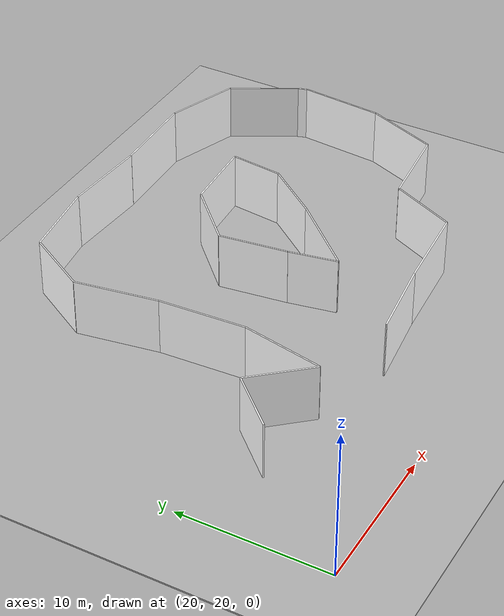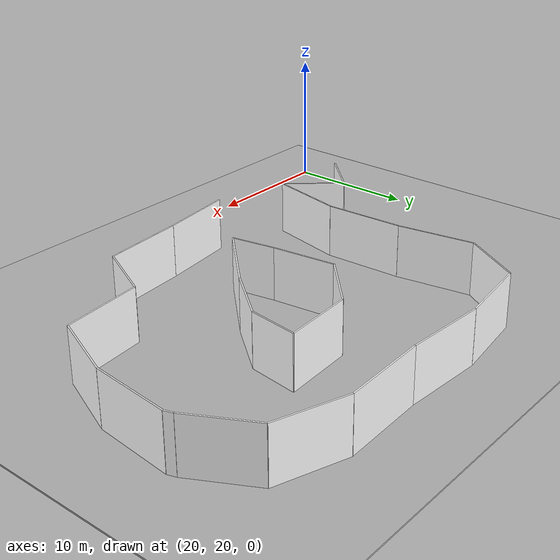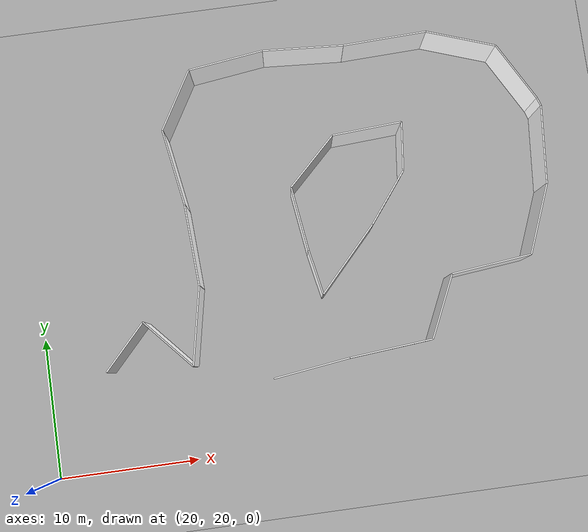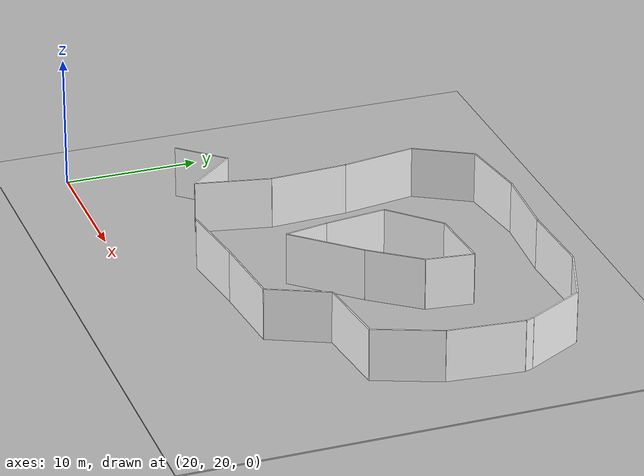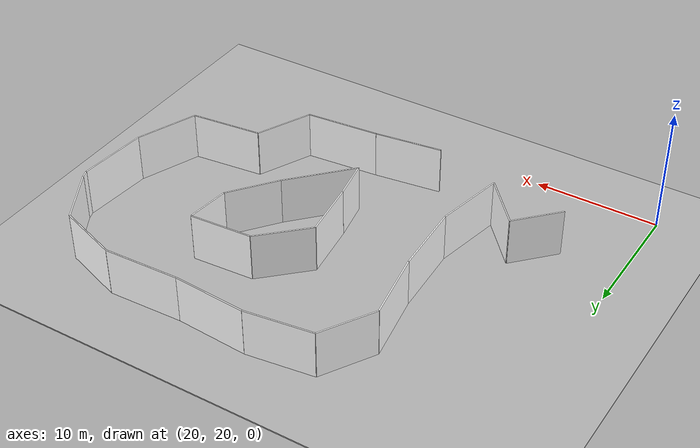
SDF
<sdf version="1.6">
 <world name="mars cave">
  <model name="ground_plane">
   <static>1</static>
   <link name="link">
    <collision name="collision"><geometry><box><size>200 200 0.1</size></box></geometry></collision>
    <visual name="visual">
     <cast_shadows>0</cast_shadows>
     <geometry><box><size>200 200 0.1</size></box></geometry>
     <material>
      <script>
       <uri>model://mars_plane/materials/scripts</uri>
       <uri>model://mars_plane/materials/textures</uri>
       <name>vrc/mars</name>
      </script>
     </material>
    </visual>
   </link>
   <pose>30 30 0 0 0 0</pose>
  </model>
  <model name="wall_0">
   <pose>57.35 38.7 2.0 0 0 1.4817467441603989</pose>
   <link name="Wall_0">
    <collision name="Wall_0_Collision">
     <geometry><box><size>5.62227711874824 4 0.1</size></box></geometry>
    </collision>
    <visual name="Wall_0_Visual">
     <geometry><box><size>5.62227711874824 4 0.1</size></box></geometry>
     <material>
      <script>
       <uri>model://walls/materials/scripts</uri>
       <name>mars/wall01</name>
       <uri>model://walls/materials/textures</uri>
      </script>
      <ambient>1 1 1 1</ambient>
     </material>
    </visual>
    <pose>0 0 0 1.5707963267948966 0 0</pose>
   </link>
   <static>1</static>
  </model>
  <model name="wall_1">
   <pose>56.150000000000006 33.5 2.0 0 0 1.1938870564700756</pose>
   <link name="Wall_0">
    <collision name="Wall_0_Collision">
     <geometry><box><size>5.16236379965612 4 0.1</size></box></geometry>
    </collision>
    <visual name="Wall_0_Visual">
     <geometry><box><size>5.16236379965612 4 0.1</size></box></geometry>
     <material>
      <script>
       <uri>model://walls/materials/scripts</uri>
       <name>mars/wall01</name>
       <uri>model://walls/materials/textures</uri>
      </script>
      <ambient>1 1 1 1</ambient>
     </material>
    </visual>
    <pose>0 0 0 1.5707963267948966 0 0</pose>
   </link>
   <static>1</static>
  </model>
  <model name="wall_2">
   <pose>52.35 30.8 2.0 0 0 0.10487693873023408</pose>
   <link name="Wall_0">
    <collision name="Wall_0_Collision">
     <geometry><box><size>5.731491952362843 4 0.1</size></box></geometry>
    </collision>
    <visual name="Wall_0_Visual">
     <geometry><box><size>5.731491952362843 4 0.1</size></box></geometry>
     <material>
      <script>
       <uri>model://walls/materials/scripts</uri>
       <name>mars/wall01</name>
       <uri>model://walls/materials/textures</uri>
      </script>
      <ambient>1 1 1 1</ambient>
     </material>
    </visual>
    <pose>0 0 0 1.5707963267948966 0 0</pose>
   </link>
   <static>1</static>
  </model>
  <model name="wall_3">
   <pose>48.5 28.35 2.0 0 0 1.1354430516425942</pose>
   <link name="Wall_0">
    <collision name="Wall_0_Collision">
     <geometry><box><size>4.742362280551751 4 0.1</size></box></geometry>
    </collision>
    <visual name="Wall_0_Visual">
     <geometry><box><size>4.742362280551751 4 0.1</size></box></geometry>
     <material>
      <script>
       <uri>model://walls/materials/scripts</uri>
       <name>mars/wall01</name>
       <uri>model://walls/materials/textures</uri>
      </script>
      <ambient>1 1 1 1</ambient>
     </material>
    </visual>
    <pose>0 0 0 1.5707963267948966 0 0</pose>
   </link>
   <static>1</static>
  </model>
  <model name="wall_4">
   <pose>44.55 25.95 2.0 0 0 0.08454375551299816</pose>
   <link name="Wall_0">
    <collision name="Wall_0_Collision">
     <geometry><box><size>5.921148537234983 4 0.1</size></box></geometry>
    </collision>
    <visual name="Wall_0_Visual">
     <geometry><box><size>5.921148537234983 4 0.1</size></box></geometry>
     <material>
      <script>
       <uri>model://walls/materials/scripts</uri>
       <name>mars/wall01</name>
       <uri>model://walls/materials/textures</uri>
      </script>
      <ambient>1 1 1 1</ambient>
     </material>
    </visual>
    <pose>0 0 0 1.5707963267948966 0 0</pose>
   </link>
   <static>1</static>
  </model>
  <model name="wall_5">
   <pose>38.900000000000006 25.35 2.0 0 0 0.12891077168399134</pose>
   <link name="Wall_0">
    <collision name="Wall_0_Collision">
     <geometry><box><size>5.445181356024791 4 0.1</size></box></geometry>
    </collision>
    <visual name="Wall_0_Visual">
     <geometry><box><size>5.445181356024791 4 0.1</size></box></geometry>
     <material>
      <script>
       <uri>model://walls/materials/scripts</uri>
       <name>mars/wall01</name>
       <uri>model://walls/materials/textures</uri>
      </script>
      <ambient>1 1 1 1</ambient>
     </material>
    </visual>
    <pose>0 0 0 1.5707963267948966 0 0</pose>
   </link>
   <static>1</static>
  </model>
  <model name="wall_60">
   <pose>26.25 28.55 2.0 0 0 -2.322873494314097</pose>
   <link name="Wall_0">
    <collision name="Wall_0_Collision">
     <geometry><box><size>4.244997055358225 4 0.1</size></box></geometry>
    </collision>
    <visual name="Wall_0_Visual">
     <geometry><box><size>4.244997055358225 4 0.1</size></box></geometry>
     <material>
      <script>
       <uri>model://walls/materials/scripts</uri>
       <name>mars/wall08</name>
       <uri>model://walls/materials/textures</uri>
      </script>
      <ambient>1 1 1 1</ambient>
     </material>
    </visual>
    <pose>0 0 0 1.5707963267948966 0 0</pose>
   </link>
   <static>1</static>
  </model>
  <model name="wall_61">
   <pose>29.25 28.35 2.0 0 0 2.295662470410238</pose>
   <link name="Wall_0">
    <collision name="Wall_0_Collision">
     <geometry><box><size>4.675467891024384 4 0.1</size></box></geometry>
    </collision>
    <visual name="Wall_0_Visual">
     <geometry><box><size>4.675467891024384 4 0.1</size></box></geometry>
     <material>
      <script>
       <uri>model://walls/materials/scripts</uri>
       <name>mars/stop_sign</name>
       <uri>model://walls/materials/textures</uri>
      </script>
      <ambient>1 1 1 1</ambient>
     </material>
    </visual>
    <pose>0 0 0 1.5707963267948966 0 0</pose>
   </link>
   <static>1</static>
  </model>
  <model name="wall_62">
   <pose>31.35 29.35 2.0 0 0 -1.768191886644777</pose>
   <link name="Wall_0">
    <collision name="Wall_0_Collision">
     <geometry><box><size>5.608921464952063 4 0.1</size></box></geometry>
    </collision>
    <visual name="Wall_0_Visual">
     <geometry><box><size>5.608921464952063 4 0.1</size></box></geometry>
     <material>
      <script>
       <uri>model://walls/materials/scripts</uri>
       <name>mars/wall08</name>
       <uri>model://walls/materials/textures</uri>
      </script>
      <ambient>1 1 1 1</ambient>
     </material>
    </visual>
    <pose>0 0 0 1.5707963267948966 0 0</pose>
   </link>
   <static>1</static>
  </model>
  <model name="wall_63">
   <pose>31.75 35.0 2.0 0 0 -1.5191182423124672</pose>
   <link name="Wall_0">
    <collision name="Wall_0_Collision">
     <geometry><box><size>5.807753438292639 4 0.1</size></box></geometry>
    </collision>
    <visual name="Wall_0_Visual">
     <geometry><box><size>5.807753438292639 4 0.1</size></box></geometry>
     <material>
      <script>
       <uri>model://walls/materials/scripts</uri>
       <name>mars/wall08</name>
       <uri>model://walls/materials/textures</uri>
      </script>
      <ambient>1 1 1 1</ambient>
     </material>
    </visual>
    <pose>0 0 0 1.5707963267948966 0 0</pose>
   </link>
   <static>1</static>
  </model>
  <model name="wall_64">
   <pose>31.15 40.65 2.0 0 0 -1.408597493331514</pose>
   <link name="Wall_0">
    <collision name="Wall_0_Collision">
     <geometry><box><size>5.573149917237109 4 0.1</size></box></geometry>
    </collision>
    <visual name="Wall_0_Visual">
     <geometry><box><size>5.573149917237109 4 0.1</size></box></geometry>
     <material>
      <script>
       <uri>model://walls/materials/scripts</uri>
       <name>mars/wall09</name>
       <uri>model://walls/materials/textures</uri>
      </script>
      <ambient>1 1 1 1</ambient>
     </material>
    </visual>
    <pose>0 0 0 1.5707963267948966 0 0</pose>
   </link>
   <static>1</static>
  </model>
  <model name="wall_65">
   <pose>31.9 45.45 2.0 0 0 -2.100385925576973</pose>
   <link name="Wall_0">
    <collision name="Wall_0_Collision">
     <geometry><box><size>4.750789408087884 4 0.1</size></box></geometry>
    </collision>
    <visual name="Wall_0_Visual">
     <geometry><box><size>4.750789408087884 4 0.1</size></box></geometry>
     <material>
      <script>
       <uri>model://walls/materials/scripts</uri>
       <name>mars/wall09</name>
       <uri>model://walls/materials/textures</uri>
      </script>
      <ambient>1 1 1 1</ambient>
     </material>
    </visual>
    <pose>0 0 0 1.5707963267948966 0 0</pose>
   </link>
   <static>1</static>
  </model>
  <model name="wall_66">
   <pose>35.8 47.85 2.0 0 0 -3.0126818819058014</pose>
   <link name="Wall_0">
    <collision name="Wall_0_Collision">
     <geometry><box><size>5.445181356024792 4 0.1</size></box></geometry>
    </collision>
    <visual name="Wall_0_Visual">
     <geometry><box><size>5.445181356024792 4 0.1</size></box></geometry>
     <material>
      <script>
       <uri>model://walls/materials/scripts</uri>
       <name>mars/wall09</name>
       <uri>model://walls/materials/textures</uri>
      </script>
      <ambient>1 1 1 1</ambient>
     </material>
    </visual>
    <pose>0 0 0 1.5707963267948966 0 0</pose>
   </link>
   <static>1</static>
  </model>
  <model name="wall_67">
   <pose>41.4 48.0 2.0 0 0 3.072736164288748</pose>
   <link name="Wall_0">
    <collision name="Wall_0_Collision">
     <geometry><box><size>5.81377674149945 4 0.1</size></box></geometry>
    </collision>
    <visual name="Wall_0_Visual">
     <geometry><box><size>5.81377674149945 4 0.1</size></box></geometry>
     <material>
      <script>
       <uri>model://walls/materials/scripts</uri>
       <name>mars/wall09</name>
       <uri>model://walls/materials/textures</uri>
      </script>
      <ambient>1 1 1 1</ambient>
     </material>
    </visual>
    <pose>0 0 0 1.5707963267948966 0 0</pose>
   </link>
   <static>1</static>
  </model>
  <model name="wall_68">
   <pose>47.3 47.9 2.0 0 0 -3.1082716577115455</pose>
   <link name="Wall_0">
    <collision name="Wall_0_Collision">
     <geometry><box><size>6.003332407921453 4 0.1</size></box></geometry>
    </collision>
    <visual name="Wall_0_Visual">
     <geometry><box><size>6.003332407921453 4 0.1</size></box></geometry>
     <material>
      <script>
       <uri>model://walls/materials/scripts</uri>
       <name>mars/wall09</name>
       <uri>model://walls/materials/textures</uri>
      </script>
      <ambient>1 1 1 1</ambient>
     </material>
    </visual>
    <pose>0 0 0 1.5707963267948966 0 0</pose>
   </link>
   <static>1</static>
  </model>
  <model name="wall_69">
   <pose>52.7 47.15 2.0 0 0 2.801210714947886</pose>
   <link name="Wall_0">
    <collision name="Wall_0_Collision">
     <geometry><box><size>5.092150822589611 4 0.1</size></box></geometry>
    </collision>
    <visual name="Wall_0_Visual">
     <geometry><box><size>5.092150822589611 4 0.1</size></box></geometry>
     <material>
      <script>
       <uri>model://walls/materials/scripts</uri>
       <name>mars/stop_sign</name>
       <uri>model://walls/materials/textures</uri>
      </script>
      <ambient>1 1 1 1</ambient>
     </material>
    </visual>
    <pose>0 0 0 1.5707963267948966 0 0</pose>
   </link>
   <static>1</static>
  </model>
  <model name="wall_70">
   <pose>56.25 44.2 2.0 0 0 2.071809713598486</pose>
   <link name="Wall_0">
    <collision name="Wall_0_Collision">
     <geometry><box><size>4.7885279575251465 4 0.1</size></box></geometry>
    </collision>
    <visual name="Wall_0_Visual">
     <geometry><box><size>4.7885279575251465 4 0.1</size></box></geometry>
     <material>
      <script>
       <uri>model://walls/materials/scripts</uri>
       <name>mars/wall09</name>
       <uri>model://walls/materials/textures</uri>
      </script>
      <ambient>1 1 1 1</ambient>
     </material>
    </visual>
    <pose>0 0 0 1.5707963267948966 0 0</pose>
   </link>
   <static>1</static>
  </model>
  <model name="wall_71">
   <pose>57.5 41.8 2.0 0 0 1.8925468811915425</pose>
   <link name="Wall_0">
    <collision name="Wall_0_Collision">
     <geometry><box><size>0.6324555320336781 4 0.1</size></box></geometry>
    </collision>
    <visual name="Wall_0_Visual">
     <geometry><box><size>0.6324555320336781 4 0.1</size></box></geometry>
     <material>
      <script>
       <uri>model://walls/materials/scripts</uri>
       <name>mars/wall09</name>
       <uri>model://walls/materials/textures</uri>
      </script>
      <ambient>1 1 1 1</ambient>
     </material>
    </visual>
    <pose>0 0 0 1.5707963267948966 0 0</pose>
   </link>
   <static>1</static>
  </model>
  <model name="wall_72">
   <pose>47.400000000000006 39.95 2.0 0 0 1.457004319651189</pose>
   <link name="Wall_0">
    <collision name="Wall_0_Collision">
     <geometry><box><size>3.522782990761707 4 0.1</size></box></geometry>
    </collision>
    <visual name="Wall_0_Visual">
     <geometry><box><size>3.522782990761707 4 0.1</size></box></geometry>
     <material>
      <script>
       <uri>model://walls/materials/scripts</uri>
       <name>mars/wall10</name>
       <uri>model://walls/materials/textures</uri>
      </script>
      <ambient>1 1 1 1</ambient>
     </material>
    </visual>
    <pose>0 0 0 1.5707963267948966 0 0</pose>
   </link>
   <static>1</static>
  </model>
  <model name="wall_73">
   <pose>45.85 36.45 2.0 0 0 0.9137213910832426</pose>
   <link name="Wall_0">
    <collision name="Wall_0_Collision">
     <geometry><box><size>4.420407221060071 4 0.1</size></box></geometry>
    </collision>
    <visual name="Wall_0_Visual">
     <geometry><box><size>4.420407221060071 4 0.1</size></box></geometry>
     <material>
      <script>
       <uri>model://walls/materials/scripts</uri>
       <name>mars/wall10</name>
       <uri>model://walls/materials/textures</uri>
      </script>
      <ambient>1 1 1 1</ambient>
     </material>
    </visual>
    <pose>0 0 0 1.5707963267948966 0 0</pose>
   </link>
   <static>1</static>
  </model>
  <model name="wall_74">
   <pose>42.45 32.5 2.0 0 0 0.8206776369910397</pose>
   <link name="Wall_0">
    <collision name="Wall_0_Collision">
     <geometry><box><size>6.01414998150196 4 0.1</size></box></geometry>
    </collision>
    <visual name="Wall_0_Visual">
     <geometry><box><size>6.01414998150196 4 0.1</size></box></geometry>
     <material>
      <script>
       <uri>model://walls/materials/scripts</uri>
       <name>mars/wall10</name>
       <uri>model://walls/materials/textures</uri>
      </script>
      <ambient>1 1 1 1</ambient>
     </material>
    </visual>
    <pose>0 0 0 1.5707963267948966 0 0</pose>
   </link>
   <static>1</static>
  </model>
  <model name="wall_75">
   <pose>40.099999999999994 31.9 2.0 0 0 -1.3854483767992014</pose>
   <link name="Wall_0">
    <collision name="Wall_0_Collision">
     <geometry><box><size>3.2557641192199407 4 0.1</size></box></geometry>
    </collision>
    <visual name="Wall_0_Visual">
     <geometry><box><size>3.2557641192199407 4 0.1</size></box></geometry>
     <material>
      <script>
       <uri>model://walls/materials/scripts</uri>
       <name>mars/wall10</name>
       <uri>model://walls/materials/textures</uri>
      </script>
      <ambient>1 1 1 1</ambient>
     </material>
    </visual>
    <pose>0 0 0 1.5707963267948966 0 0</pose>
   </link>
   <static>1</static>
  </model>
  <model name="wall_76">
   <pose>39.5 35.8 2.0 0 0 -1.4410937896389857</pose>
   <link name="Wall_0">
    <collision name="Wall_0_Collision">
     <geometry><box><size>4.6389654018972815 4 0.1</size></box></geometry>
    </collision>
    <visual name="Wall_0_Visual">
     <geometry><box><size>4.6389654018972815 4 0.1</size></box></geometry>
     <material>
      <script>
       <uri>model://walls/materials/scripts</uri>
       <name>mars/wall10</name>
       <uri>model://walls/materials/textures</uri>
      </script>
      <ambient>1 1 1 1</ambient>
     </material>
    </visual>
    <pose>0 0 0 1.5707963267948966 0 0</pose>
   </link>
   <static>1</static>
  </model>
  <model name="wall_77">
   <pose>40.900000000000006 39.75 2.0 0 0 -2.37111875518243</pose>
   <link name="Wall_0">
    <collision name="Wall_0_Collision">
     <geometry><box><size>4.73814309619285 4 0.1</size></box></geometry>
    </collision>
    <visual name="Wall_0_Visual">
     <geometry><box><size>4.73814309619285 4 0.1</size></box></geometry>
     <material>
      <script>
       <uri>model://walls/materials/scripts</uri>
       <name>mars/wall10</name>
       <uri>model://walls/materials/textures</uri>
      </script>
      <ambient>1 1 1 1</ambient>
     </material>
    </visual>
    <pose>0 0 0 1.5707963267948966 0 0</pose>
   </link>
   <static>1</static>
  </model>
  <model name="wall_78">
   <pose>45.1 41.55 2.0 0 0 -3.0816644984685846</pose>
   <link name="Wall_0">
    <collision name="Wall_0_Collision">
     <geometry><box><size>5.008991914547278 4 0.1</size></box></geometry>
    </collision>
    <visual name="Wall_0_Visual">
     <geometry><box><size>5.008991914547278 4 0.1</size></box></geometry>
     <material>
      <script>
       <uri>model://walls/materials/scripts</uri>
       <name>mars/wall10</name>
       <uri>model://walls/materials/textures</uri>
      </script>
      <ambient>1 1 1 1</ambient>
     </material>
    </visual>
    <pose>0 0 0 1.5707963267948966 0 0</pose>
   </link>
   <static>1</static>
  </model>
  <model name="wall_79">
   <pose>36.2 25.0 2.0 0 0 0.0</pose>
   <link name="Wall_0">
    <collision name="Wall_0_Collision"><geometry><box><size>0.0 4 0.1</size></box></geometry></collision>
    <visual name="Wall_0_Visual">
     <geometry><box><size>0.0 4 0.1</size></box></geometry>
     <material>
      <script>
       <uri>model://walls/materials/scripts</uri>
       <name>mars/wall10</name>
       <uri>model://walls/materials/textures</uri>
      </script>
      <ambient>1 1 1 1</ambient>
     </material>
    </visual>
    <pose>0 0 0 1.5707963267948966 0 0</pose>
   </link>
   <static>1</static>
  </model>
 </world>
</sdf>
